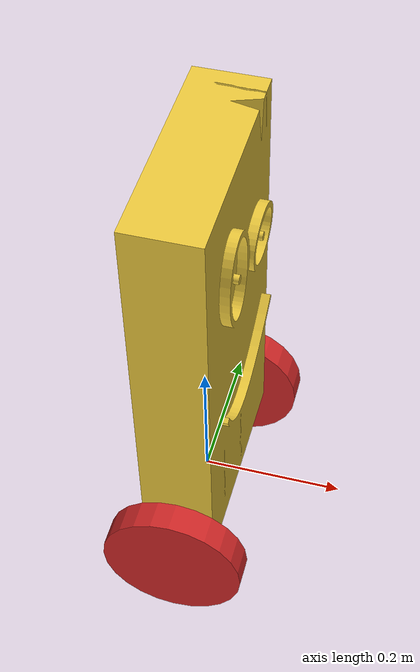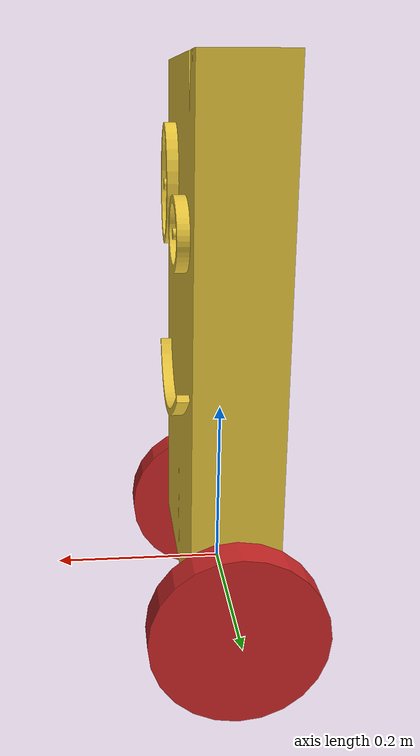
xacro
<?xml version="1.0" ?>
<robot name="2wheel" xmlns:xacro="http://www.ros.org/wiki/xacro">

  <material name="black">
    <color rgba="0.0 0.0 0.0 1.0"/>
  </material>
  <material name="blue">
    <color rgba="0.203125 0.23828125 0.28515625 1.0"/>
  </material>
  <material name="green">
    <color rgba="0.0 0.8 0.0 1.0"/>
  </material>
  <material name="grey">
    <color rgba="0.2 0.2 0.2 1.0"/>
  </material>
  <material name="orange">
    <color rgba="1.0 0.423529411765 0.0392156862745 1.0"/>
  </material>
  <material name="brown">
    <color rgba="0.870588235294 0.811764705882 0.764705882353 1.0"/>
  </material>
  <material name="red">
    <color rgba="0.80078125 0.12890625 0.1328125 1.0"/>
  </material>
  <material name="white">
    <color rgba="1.0 1.0 1.0 1.0"/>
  </material>
  <material name="plank">
    <color rgba="0.9098 0.77255 0.2314 1.0"/>
  </material>

<!-- Start: For URDF to Gazebo compatibility -->
	<!-- LINKS -->
  <gazebo reference="link_chassis">
    <material>Gazebo/Yellow</material>
  </gazebo>
  <gazebo reference="link_mouth">
    <material>Gazebo/Blue</material>
  </gazebo>
  <gazebo reference="link_eyes">
    <material>Gazebo/Red</material>
  </gazebo>
  <gazebo reference="link_left_wheel">
    <material>Gazebo/Red</material>
    <mu1>0.4</mu1>
    <mu2>0.4</mu2>
  </gazebo>
  <gazebo reference="link_right_wheel">
    <material>Gazebo/Red</material>
    <mu1>0.4</mu1>
    <mu2>0.4</mu2>
  </gazebo>
	<!-- JOINTS -->
  <gazebo reference="joint_right_wheel">
  </gazebo>
  <gazebo reference="joint_left_wheel">
  </gazebo>

	<!-- PLUGINS -->
  <gazebo>
    <plugin filename="libgazebo_ros_diff_drive.so" name="differential_drive_controller">
      <legacyMode>false</legacyMode>
      <alwaysOn>true</alwaysOn>
      <updateRate>10</updateRate>
      <leftJoint>joint_left_wheel</leftJoint>
      <rightJoint>joint_right_wheel</rightJoint>
      <wheelSeparation>0.34</wheelSeparation>
      <wheelDiameter>0.2</wheelDiameter>
      <wheelTorque>0.8</wheelTorque>
      <commandTopic>cmd_vel</commandTopic>
      <odometryTopic>odom</odometryTopic>
      <odometryFrame>odom</odometryFrame>
      <robotBaseFrame>link_chassis</robotBaseFrame>
    </plugin>
  </gazebo>

  <gazebo>
      <plugin name="imu_plugin" filename="libgazebo_ros_imu.so">
          <alwaysOn>true</alwaysOn>
					<updateRate>100</updateRate>
          <bodyName>dummy_link</bodyName>
          <topicName>imu</topicName>
          <serviceName>imu_service</serviceName>
          <gaussianNoise>0.0</gaussianNoise>
          <rpyOffsets>0 0 0</rpyOffsets>
					<xyzOffset>0 0 0.3</xyzOffset>

          <accelDrift>0.5 0.5 0.5</accelDrift>
          <accelGaussianNoise>0.35 0.35 0.3</accelGaussianNoise>
          <rateDrift>0.0 0.0 0.0</rateDrift>
          <rateGaussianNoise>0.00 0.00 0.00</rateGaussianNoise>
          <headingDrift>0.0</headingDrift>
          <headingGaussianNoise>0.00</headingGaussianNoise>
      </plugin>
   </gazebo>
<!-- xyzOffset is a workaround for problem. check generated code with gz sdf -p 2wheel.xacro-->

<!-- End: For URDF to Gazebo compatibility -->

	<link name="dummy_link"/>
	<link name="imu_link">
    <inertial>
      <mass value="0.0001"/>
      <origin rpy="0 0 0" xyz="0 0 0"/>
      <inertia ixx="0.000001" ixy="0" ixz="0" iyy="0.000001" iyz="0" izz="0.000001"/>
    </inertial>
  </link>

  <link name="link_chassis">
    <!-- pose and inertial -->
    <pose>0 0 0.1 0 0 0</pose>
    <inertial>
      <mass value="2"/>
      <origin rpy="0 0 0" xyz="0 0 0.3"/>
      <inertia ixx="0.075" ixy="0" ixz="0" iyy="0.061667" iyz="0" izz="0.01667"/>
    </inertial>
    <!-- body -->
    <collision name="collision_chassis">
      <origin rpy="0 0 0" xyz="0 0 0.3"/>
      <geometry>
        <box size="0.1 0.3 0.6"/>
      </geometry>
    </collision>
    <visual>
			<origin rpy="0 0 0" xyz="0 0 0"/>
      <geometry>
				<mesh filename="package://robot_description/stl/Plank.stl" scale="1 1 1"/>
      </geometry>
      <material name="plank"/>
    </visual>
  </link>

	<link name="link_mouth">
    <!-- pose and inertial -->
    <pose>0 0 0.1 0 0 0</pose>
    <inertial>
      <mass value="0.0001"/>
      <origin rpy="0 0 0" xyz="0 0 0"/>
      <inertia ixx="0.000001" ixy="0" ixz="0" iyy="0.000001" iyz="0" izz="0.000001"/>
    </inertial>
    <visual>
			<origin rpy="0 0 0" xyz="0 0 0"/>
      <geometry>
				<mesh filename="package://robot_description/stl/mouth.stl" scale="1 1 1"/>
      </geometry>
      <material name="blue"/>
    </visual>
  </link>

	<link name="link_eyes">
    <!-- pose and inertial -->
    <pose>0 0 0.1 0 0 0</pose>
    <inertial>
      <mass value="0.0001"/>
      <origin rpy="0 0 0" xyz="0 0 0"/>
      <inertia ixx="0.000001" ixy="0" ixz="0" iyy="0.000001" iyz="0" izz="0.000001"/>
    </inertial>
    <visual>
			<origin rpy="0 0 0" xyz="0 0 0"/>
      <geometry>
				<mesh filename="package://robot_description/stl/eyes.stl" scale="1 1 1"/>
      </geometry>
      <material name="red"/>
    </visual>
  </link>

	<joint name="base_joint" type="fixed">
    <origin rpy="0 0 0" xyz="0 0 0"/>
		<child link="link_chassis"/>
    <parent link="dummy_link"/>
  </joint>
	<joint name="imu_joint" type="fixed">
    <origin rpy="0 0 0" xyz="0 0 0.3"/>
		<child link="imu_link"/>
    <parent link="link_chassis"/>
  </joint>
	<joint name="eyes_joint" type="fixed">
    <origin rpy="0 0 0" xyz="0 0 0"/>
		<child link="link_eyes"/>
    <parent link="link_chassis"/>
  </joint>
	<joint name="mouth_joint" type="fixed">
    <origin rpy="0 0 0" xyz="0 0 0"/>
		<child link="link_mouth"/>
    <parent link="link_chassis"/>
  </joint>

  <link name="link_left_wheel">
    <inertial>
      <mass value="0.2"/>
      <origin rpy="0 1.5707 1.5707" xyz="0 0 0"/>
      <inertia ixx="0.001" ixy="0" ixz="0" iyy="0.0005" iyz="0" izz="0.0005"/>
    </inertial>
    <collision name="link_left_wheel_collision">
      <origin rpy="0 1.5707 1.5707" xyz="0 0 0"/>
      <geometry>
        <cylinder length="0.04" radius="0.1"/>
      </geometry>
    </collision>
    <visual name="link_left_wheel_visual">
      <origin rpy="0 1.5707 1.5707" xyz="0 0 0"/>
      <geometry>
        <cylinder length="0.04" radius="0.1"/>
      </geometry>
    </visual>
  </link>

  <joint name="joint_left_wheel" type="revolute">  <!-- We set revolute with infinite limits as a workaround to sdf conversion problems -->
    <origin rpy="0 0 0" xyz="0 0.17 0"/>
    <child link="link_left_wheel"/>
    <parent link="link_chassis"/>
    <axis rpy="0 0 0" xyz="0 1 0"/>
		<limit effort="0.8" velocity="30" lower="-1e+16" upper="1e+16" />
    <dynamics damping="0.0005" friction="0.0005"/>  <!-- damping coefficient: [N*m*s/rad] 0.0005-->
		<safety_controller k_velocity="0.026"/>  <!-- Kv en este caso: Torque/vel (http://wiki.ros.org/pr2_controller_manager/safety_limits) -->
  </joint>

  <link name="link_right_wheel">
    <inertial>
      <mass value="0.2"/>
      <origin rpy="0 1.5707 1.5707" xyz="0 0 0"/>
      <inertia ixx="0.001" ixy="0" ixz="0" iyy="0.0005" iyz="0" izz="0.0005"/>
    </inertial>
    <collision name="link_right_wheel_collision">
      <origin rpy="0 1.5707 1.5707" xyz="0 0 0"/>
      <geometry>
        <cylinder length="0.04" radius="0.1"/>
      </geometry>
    </collision>
    <visual name="link_right_wheel_visual">
      <origin rpy="0 1.5707 1.5707" xyz="0 0 0"/>
      <geometry>
        <cylinder length="0.04" radius="0.1"/>
      </geometry>
    </visual>
  </link>

  <joint name="joint_right_wheel" type="revolute">  <!-- We set revolute with infinite limits as a workaround to sdf conversion problems -->
    <origin rpy="0 0 0" xyz="0 -0.17 0"/>
    <child link="link_right_wheel"/>
    <parent link="link_chassis"/>
    <axis rpy="0 0 0" xyz="0 1 0"/>
		<limit effort="0.8" velocity="30" lower="-1e+16" upper="1e+16" />
  	<dynamics damping="0.0005" friction="0.0005"/>  <!-- damping coefficient: [N*m*s/rad] -->
		<safety_controller k_velocity="0.026"/>  <!-- Kv en este caso: Torque/vel (http://wiki.ros.org/pr2_controller_manager/safety_limits) -->
  </joint>

	<!-- TRANSMISION (TODO)-->
</robot>
